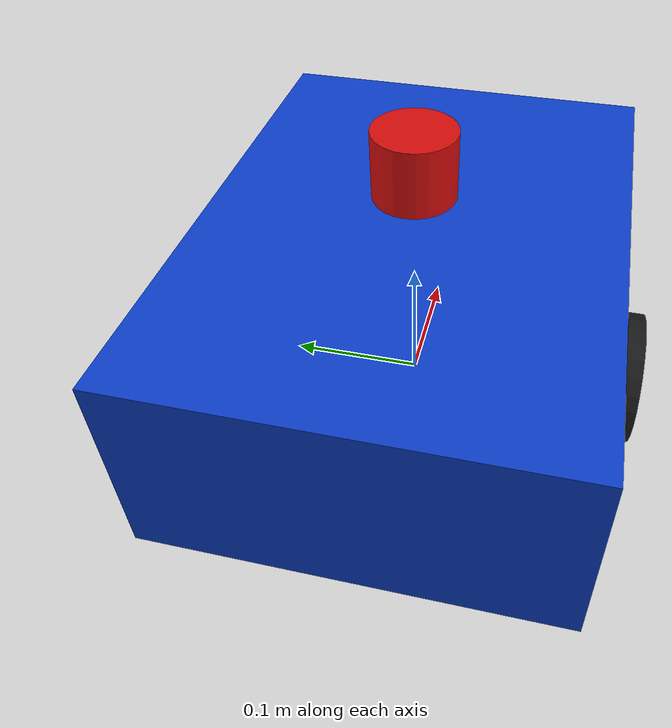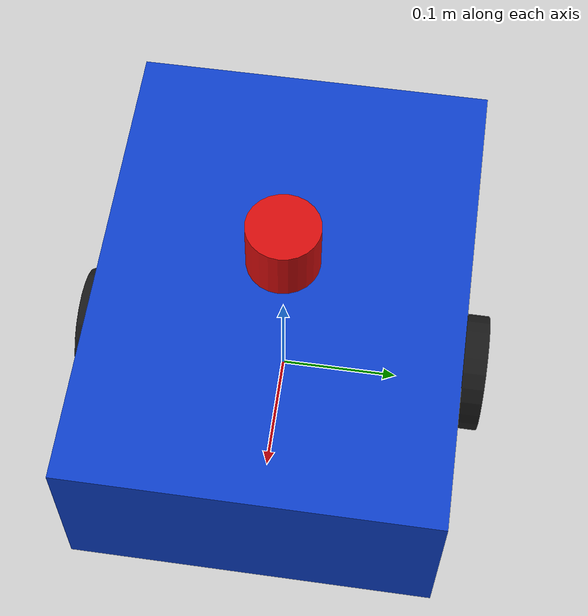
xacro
<?xml version="1.0"?>

<robot name="amr_robot" xmlns:xacro="http://www.ros.org/wiki/xacro">

  <!-- Robot Parameters                                           -->

  <xacro:property name="base_length" value="0.40"/>
  <xacro:property name="base_width" value="0.30"/>
  <xacro:property name="base_height" value="0.15"/>

  <xacro:property name="wheel_radius" value="0.05"/>
  <xacro:property name="wheel_width" value="0.03"/>

  <xacro:property name="wheel_offset_x" value="0.0"/>
  <xacro:property name="wheel_offset_y" value="0.16"/>
  <xacro:property name="wheel_offset_z" value="-0.05"/>

  <!-- Materials                                                  -->

  <material name="blue">
    <color rgba="0.05 0.25 0.80 1.0"/>
  </material>

  <material name="black">
    <color rgba="0.10 0.10 0.10 1.0"/>
  </material>

  <material name="red">
    <color rgba="0.85 0.05 0.05 1.0"/>
  </material>

  <!-- Base Footprint                                             -->

  <link name="base_footprint"/>

  <!-- Base Link                                                  -->

  <joint name="base_joint" type="fixed">

    <parent link="base_footprint"/>

    <child link="base_link"/>

    <origin xyz="0 0 ${base_height/2}" rpy="0 0 0"/>

  </joint>

  <link name="base_link">

    <visual>

      <geometry>

        <box size="${base_length}
                   ${base_width}
                   ${base_height}"/>

      </geometry>

      <material name="blue"/>

    </visual>

    <collision>

      <geometry>

        <box size="${base_length}
                   ${base_width}
                   ${base_height}"/>

      </geometry>

    </collision>

    <inertial>

      <mass value="5.0"/>

      <origin xyz="0 0 0"/>

      <inertia
          ixx="0.10"
          iyy="0.10"
          izz="0.10"
          ixy="0"
          ixz="0"
          iyz="0"/>

    </inertial>

  </link>

  <!-- Left Wheel                                                 -->

  <joint name="left_wheel_joint"
         type="continuous">

    <parent link="base_link"/>

    <child link="left_wheel"/>

    <origin
        xyz="${wheel_offset_x}
             ${wheel_offset_y}
             ${wheel_offset_z}"

        rpy="1.5708 0 0"/>

    <axis xyz="0 1 0"/>

  </joint>

  <link name="left_wheel">

    <visual>

      <geometry>

        <cylinder
            radius="${wheel_radius}"
            length="${wheel_width}"/>

      </geometry>

      <material name="black"/>

    </visual>

  </link>

  <!-- Right Wheel                                                -->

  <joint name="right_wheel_joint"
         type="continuous">

    <parent link="base_link"/>

    <child link="right_wheel"/>

    <origin
        xyz="${wheel_offset_x}
             -${wheel_offset_y}
             ${wheel_offset_z}"

        rpy="1.5708 0 0"/>

    <axis xyz="0 1 0"/>

  </joint>

  <link name="right_wheel">

    <visual>

      <geometry>

        <cylinder
            radius="${wheel_radius}"
            length="${wheel_width}"/>

      </geometry>

      <material name="black"/>

    </visual>

  </link>

  <!-- LiDAR                                                      -->

  <joint name="lidar_joint"
         type="fixed">

    <parent link="base_link"/>

    <child link="lidar_link"/>

    <origin xyz="0 0 0.12"/>

  </joint>

  <link name="lidar_link">

    <visual>

      <geometry>

        <cylinder
            radius="0.03"
            length="0.05"/>

      </geometry>

      <material name="red"/>

    </visual>

  </link>

</robot>
